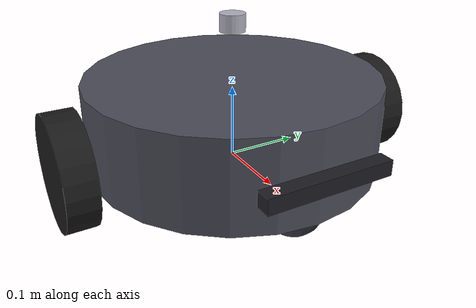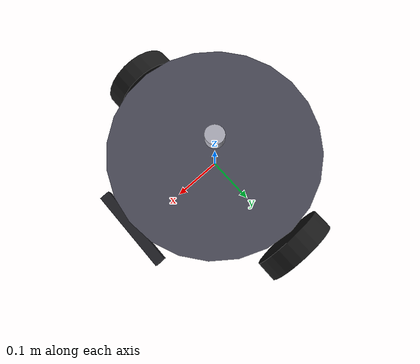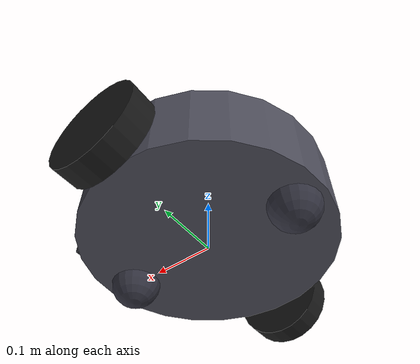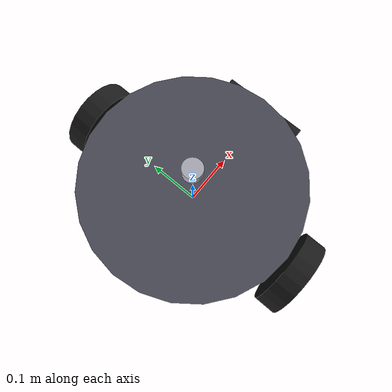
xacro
<?xml version="1.0" encoding="UTF-8"?>
<robot name="diff_drive_robot" xmlns:xacro="http://www.ros.org/wiki/xacro">

  <!-- ========================== 引入子文件 ========================== -->
  <xacro:include filename="$(find multimap_nav_simulation)/robot/part/chassis.xacro"/>
  <xacro:include filename="$(find multimap_nav_simulation)/robot/part/drive_wheel.xacro"/>
  <xacro:include filename="$(find multimap_nav_simulation)/robot/part/caster_wheel.xacro"/>
  <xacro:include filename="$(find multimap_nav_simulation)/robot/drivers/diff_drive.xacro"/>

  <xacro:include filename="$(find multimap_nav_simulation)/robot/sensors/lidar_3d.xacro"/>
  <xacro:include filename="$(find multimap_nav_simulation)/robot/sensors/imu.xacro"/>
  <xacro:include filename="$(find multimap_nav_simulation)/robot/sensors/depth_camera.xacro"/>

  <!-- ========================== 底盘 ========================== -->
  <!-- base_link 为根坐标系；离地高度由轮子/万向球的 joint 偏移 (radius - ground_clearance) 决定 -->
  <xacro:chassis/>

  <!-- ========================== 驱动轮 ========================== -->
  <!-- 左驱动轮: y=+0.23 (wheel_separation/2) -->
  <xacro:drive_wheel prefix="left"  y_pos="${wheel_separation / 2.0}" parent="base_link"/>
  <!-- 右驱动轮: y=-0.23 -->
  <xacro:drive_wheel prefix="right" y_pos="${-wheel_separation / 2.0}" parent="base_link"/>

  <!-- ========================== 万向轮 ========================== -->
  <!-- 前万向轮 -->
  <xacro:caster_wheel prefix="front" x_pos="0.15" y_pos="0.0" parent="base_link"/>
  <!-- 后万向轮 -->
  <xacro:caster_wheel prefix="rear" x_pos="-0.15" y_pos="0.0" parent="base_link"/>

  <!-- ========================== 3D 多线激光雷达 (lidar_3d) ========================== -->
  <!-- 前装：x=0.28, z=0.19。
       发布点云话题 /livox/lidar_PointCloud2，frame 为 lidar_link。 -->
  <xacro:lidar_3d parent="base_link" xyz="0 0 0.19" rpy="0 0 0"/>

  <!-- ========================== 深度相机 ========================== -->
  <!-- 前装：x=0.21 = 底盘半径 0.20 + 相机厚度一半 0.01，
       即相机后表面正好贴住底盘外壁（不嵌入本体）；
       光心在长方体前表面中心，optical 系 +Z 朝机器人正前方，
       深度点云话题 /depth_camera/depth/points 可直接作为 octomap 输入。 -->
  <xacro:depth_camera name="depth_camera" parent="base_link" xyz="0.21 0 0.06" rpy="0 0 0"/>

  <!-- ========================== IMU ========================== -->
  <!-- 安装在底盘内部中心 -->
  <xacro:imu parent="base_link" xyz="0 0 ${0.06}" rpy="0 0 0"/>

  <!-- ========================== Gazebo P3D 地面真值里程计 ========================== -->
  <gazebo>
    <plugin name="gazebo_ros_p3d" filename="libgazebo_ros_p3d.so">
      <ros>
        <!-- 插件默认话题即 odom（解析为 /odom），显式声明便于阅读 -->
        <remapping>odom:=/odom</remapping>
      </ros>
      <body_name>base_link</body_name>
      <update_rate>100</update_rate>
    </plugin>
  </gazebo>

  <!-- ========================== ros2_control + 传动 ========================== -->
  <!-- 驱动轮 transmission -->
  <xacro:wheel_transmission joint_name="left_wheel_joint"/>
  <xacro:wheel_transmission joint_name="right_wheel_joint"/>

  <!-- ros2_control 硬件接口 -->
  <xacro:diff_drive_ros2_control/>

  <!-- gazebo_ros2_control 插件 -->
  <xacro:gazebo_ros2_control_plugin/>

</robot>

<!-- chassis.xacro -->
<robot xmlns:xacro="http://www.ros.org/wiki/xacro">

  <xacro:property name="chassis_radius" value="0.20"/>
  <xacro:property name="chassis_height" value="0.12"/>
  <xacro:property name="chassis_mass"   value="8.0"/>  <!-- 尺寸缩小至 1/3，按相同密度质量为 1/27 -->

  <!-- 底盘质心在圆柱几何中心 -->
  <xacro:macro name="chassis">
    <link name="base_link">
      <inertial>
        <origin xyz="0 0 ${chassis_height / 2.0}" rpy="0 0 0"/>
        <mass value="${chassis_mass}"/>
        <!-- 实心圆柱绕质心惯性矩:
             ixx = iyy = m/12 * (3*r² + h²)
             izz = m/2 * r² -->
        <inertia
          ixx="${chassis_mass / 12.0 * (3.0 * chassis_radius * chassis_radius + chassis_height * chassis_height)}"
          iyy="${chassis_mass / 12.0 * (3.0 * chassis_radius * chassis_radius + chassis_height * chassis_height)}"
          izz="${chassis_mass / 2.0 * chassis_radius * chassis_radius}"
          ixy="0.0" ixz="0.0" iyz="0.0"/>
      </inertial>

      <visual>
        <origin xyz="0 0 ${chassis_height / 2.0}" rpy="0 0 0"/>
        <geometry>
          <cylinder radius="${chassis_radius}" length="${chassis_height}"/>
        </geometry>
        <material name="dark_grey">
          <color rgba="0.3 0.3 0.35 1.0"/>
        </material>
      </visual>

      <collision>
        <origin xyz="0 0 ${chassis_height / 2.0}" rpy="0 0 0"/>
        <geometry>
          <cylinder radius="${chassis_radius}" length="${chassis_height}"/>
        </geometry>
      </collision>
    </link>
  </xacro:macro>

</robot>

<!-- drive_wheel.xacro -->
<robot xmlns:xacro="http://www.ros.org/wiki/xacro">

  <xacro:property name="wheel_radius"  value="0.075"/>
  <xacro:property name="wheel_length"  value="0.04"/>
  <xacro:property name="wheel_mass"    value="0.5"/>  <!-- 尺寸缩小至 1/3，按相同密度质量为 1/27 -->
  <xacro:property name="wheel_x_pos"   value="0.0"/>   <!-- 驱动轮 X 位置（与质心对齐） -->
  <xacro:property name="ground_clearance" value="0.04"/>

  <xacro:macro name="drive_wheel" params="prefix y_pos parent:=base_link">
    <!-- joint: 绕 Y 轴旋转 -->
    <joint name="${prefix}_wheel_joint" type="continuous">
      <parent link="${parent}"/>
      <child link="${prefix}_wheel_link"/>
      <origin xyz="${wheel_x_pos} ${y_pos} ${wheel_radius - ground_clearance}" rpy="0 0 0"/>
      <axis xyz="0 1 0"/>
      <limit effort="100" velocity="100"/>
      <dynamics damping="0.1" friction="0.01"/>
    </joint>

    <link name="${prefix}_wheel_link">
      <inertial>
        <mass value="${wheel_mass}"/>
        <inertia
          ixx="${wheel_mass * wheel_radius * wheel_radius / 2.0}"
          iyy="${wheel_mass * (3.0 * wheel_radius * wheel_radius + wheel_length * wheel_length) / 12.0}"
          izz="${wheel_mass * (3.0 * wheel_radius * wheel_radius + wheel_length * wheel_length) / 12.0}"
          ixy="0.0" ixz="0.0" iyz="0.0"/>
      </inertial>

      <visual>
        <origin xyz="0 0 0" rpy="${pi/2.0} 0 0"/>
        <geometry>
          <cylinder radius="${wheel_radius}" length="${wheel_length}"/>
        </geometry>
        <material name="black">
          <color rgba="0.1 0.1 0.1 1.0"/>
        </material>
      </visual>

      <collision>
        <origin xyz="0 0 0" rpy="${pi/2.0} 0 0"/>
        <geometry>
          <cylinder radius="${wheel_radius}" length="${wheel_length}"/>
        </geometry>
      </collision>
    </link>

    <!-- Gazebo 物理属性 -->
    <gazebo reference="${prefix}_wheel_link">
      <mu1>4.0</mu1>       <!-- terrain 坡面纵向抓地力 -->
      <mu2>4.0</mu2>       <!-- terrain 坡面横向静摩擦 -->
      <kp>1e6</kp>
      <kd>100.0</kd>
      <maxVel>0.1</maxVel>
      <minDepth>0.001</minDepth>
      <material>Gazebo/DarkGrey</material>
    </gazebo>
  </xacro:macro>

</robot>

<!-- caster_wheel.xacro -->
<robot xmlns:xacro="http://www.ros.org/wiki/xacro">

  <xacro:property name="caster_radius"  value="0.04"/>
  <xacro:property name="caster_mass"    value="0.15"/>  <!-- 尺寸缩小至 1/3，按相同密度质量为 1/27 -->
  <xacro:property name="ground_clearance" value="0.04"/>

  <xacro:macro name="caster_wheel" params="prefix x_pos y_pos parent:=base_link">
    <!-- 万向球 joint: fixed（使用0摩擦力滑动模拟万向） -->
    <joint name="${prefix}_caster_joint" type="fixed">
      <parent link="${parent}"/>
      <child link="${prefix}_caster_link"/>
      <origin xyz="${x_pos} ${y_pos} ${caster_radius - ground_clearance}" rpy="0 0 0"/>
    </joint>

    <link name="${prefix}_caster_link">
      <inertial>
        <mass value="${caster_mass}"/>
        <!-- 实心球惯性张量: 2/5 * m * r^2 -->
        <inertia
          ixx="${2.0 * caster_mass * caster_radius * caster_radius / 5.0}"
          iyy="${2.0 * caster_mass * caster_radius * caster_radius / 5.0}"
          izz="${2.0 * caster_mass * caster_radius * caster_radius / 5.0}"
          ixy="0.0" ixz="0.0" iyz="0.0"/>
      </inertial>

      <visual>
        <origin xyz="0 0 0" rpy="0 0 0"/>
        <geometry>
          <sphere radius="${caster_radius}"/>
        </geometry>
        <material name="dark_grey">
          <color rgba="0.2 0.2 0.25 1.0"/>
        </material>
      </visual>

      <collision>
        <origin xyz="0 0 0" rpy="0 0 0"/>
        <geometry>
          <sphere radius="${caster_radius}"/>
        </geometry>
      </collision>
    </link>

    <!-- Gazebo 物理属性：0摩擦力的万向球，保证顺滑且不卡顿 -->
    <gazebo reference="${prefix}_caster_link">
      <mu1>0.0</mu1>
      <mu2>0.0</mu2>
      <kp>1e6</kp>
      <kd>100.0</kd>
      <minDepth>0.001</minDepth>
      <material>Gazebo/DarkGrey</material>
    </gazebo>
  </xacro:macro>

</robot>

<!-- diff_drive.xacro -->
<robot xmlns:xacro="http://www.ros.org/wiki/xacro">

  <xacro:property name="wheel_separation" value="0.46"/>  <!-- 左右轮距 -->
  <xacro:property name="wheel_radius"     value="0.075"/> <!-- 驱动轮半径 -->

  <xacro:macro name="wheel_transmission" params="joint_name">
    <transmission name="${joint_name}_trans">
      <type>transmission_interface/SimpleTransmission</type>
      <joint name="${joint_name}">
        <hardwareInterface>hardware_interface/VelocityJointInterface</hardwareInterface>
      </joint>
      <actuator name="${joint_name}_motor">
        <hardwareInterface>hardware_interface/VelocityJointInterface</hardwareInterface>
        <mechanicalReduction>1</mechanicalReduction>
      </actuator>
    </transmission>
  </xacro:macro>

  <xacro:macro name="diff_drive_ros2_control" params="">
    <ros2_control name="GazeboSystem" type="system">
      <hardware>
        <plugin>gazebo_ros2_control/GazeboSystem</plugin>
      </hardware>

      <joint name="left_wheel_joint">
        <command_interface name="velocity"/>
        <state_interface name="position"/>
        <state_interface name="velocity"/>
      </joint>

      <joint name="right_wheel_joint">
        <command_interface name="velocity"/>
        <state_interface name="position"/>
        <state_interface name="velocity"/>
      </joint>
    </ros2_control>
  </xacro:macro>

  <xacro:macro name="gazebo_ros2_control_plugin" params="">
    <gazebo>
      <plugin name="gazebo_ros2_control" filename="libgazebo_ros2_control.so">
        <parameters>$(find multimap_nav_simulation)/config/robot.yaml</parameters>
        <ros>
          <remapping>/diff_drive_controller/cmd_vel_unstamped:=/cmd_vel</remapping>
          <!-- /odom 已由 gazebo_ros_p3d 地面真值占用（见 robot.xacro），
               轮式里程计消息改到 /odom_diff_drive 避免双发布 -->
          <remapping>/diff_drive_controller/odom:=/odom_diff_drive</remapping>
        </ros>
      </plugin>
    </gazebo>
  </xacro:macro>

</robot>

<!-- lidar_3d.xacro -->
<robot xmlns:xacro="http://www.ros.org/wiki/xacro">

  <xacro:property name="lidar_mass"     value="0.0307407407"/> <!-- 0.83 / 27 kg -->
  <xacro:property name="lidar_radius"   value="0.0173333333"/>
  <xacro:property name="lidar_height"   value="0.024"/>

  <!-- 激光雷达扫描参数 -->
  <xacro:property name="lidar_samples"        value="1800"/>   <!-- 每圈采样数 -->
  <xacro:property name="lidar_min_angle"      value="-3.14159"/> <!-- 水平起始角 (rad) -->
  <xacro:property name="lidar_max_angle"      value="3.14159"/>  <!-- 水平终止角 (rad) -->
  <xacro:property name="lidar_min_range"      value="0.4"/>      <!-- 最小测距 (m) -->
  <xacro:property name="lidar_max_range"      value="10.0"/>     <!-- 最大测距 (m)，与 octomap max_range 一致 -->
  <xacro:property name="lidar_range_res"      value="0.02"/>     <!-- 距离分辨率 -->
  <xacro:property name="lidar_hz"             value="100.0"/>     <!-- 扫描频率 (Hz) -->
  <xacro:property name="lidar_vert_rays"      value="16"/>       <!-- 垂直线数 -->
  <xacro:property name="lidar_vert_min_angle" value="-0.2618"/>  <!-- 垂直最小角 -15° -->
  <xacro:property name="lidar_vert_max_angle" value="0.2618"/>   <!-- 垂直最大角 +15° -->

  <xacro:macro name="lidar_3d" params="parent:=base_link xyz:='0 0 0' rpy:='0 0 0'">
    <link name="lidar_link">
      <inertial>
        <mass value="${lidar_mass}"/>
        <origin xyz="0 0 0" rpy="0 0 0"/>
        <inertia
          ixx="${lidar_mass * (3.0 * lidar_radius * lidar_radius + lidar_height * lidar_height) / 12.0}"
          iyy="${lidar_mass * (3.0 * lidar_radius * lidar_radius + lidar_height * lidar_height) / 12.0}"
          izz="${lidar_mass * lidar_radius * lidar_radius / 2.0}"
          ixy="0.0" ixz="0.0" iyz="0.0"/>
      </inertial>

      <visual>
        <origin xyz="0 0 0" rpy="0 0 0"/>
        <geometry>
          <cylinder radius="${lidar_radius}" length="${lidar_height}"/>
        </geometry>
        <material name="silver">
          <color rgba="0.7 0.7 0.75 1.0"/>
        </material>
      </visual>

      <collision>
        <origin xyz="0 0 0" rpy="0 0 0"/>
        <geometry>
          <cylinder radius="${lidar_radius}" length="${lidar_height}"/>
        </geometry>
      </collision>
    </link>

    <joint name="lidar_joint" type="fixed">
      <parent link="${parent}"/>
      <child link="lidar_link"/>
      <origin xyz="${xyz}" rpy="${rpy}"/>
    </joint>

    <!-- Gazebo 多线激光雷达插件 -->
    <gazebo reference="lidar_link">
      <sensor name="lidar_sensor" type="ray">
        <pose>0 0 0 0 0 0</pose>
        <visualize>false</visualize>
        <update_rate>${lidar_hz}</update_rate>

        <ray>
          <scan>
            <horizontal>
              <samples>${lidar_samples}</samples>
              <resolution>1</resolution>
              <min_angle>${lidar_min_angle}</min_angle>
              <max_angle>${lidar_max_angle}</max_angle>
            </horizontal>
            <vertical>
              <samples>${lidar_vert_rays}</samples>
              <resolution>1</resolution>
              <min_angle>${lidar_vert_min_angle}</min_angle>
              <max_angle>${lidar_vert_max_angle}</max_angle>
            </vertical>
          </scan>
          <range>
            <min>${lidar_min_range}</min>
            <max>${lidar_max_range}</max>
            <resolution>${lidar_range_res}</resolution>
          </range>
          <noise>
            <type>gaussian</type>
            <mean>0.0</mean>
            <stddev>0.005</stddev>
          </noise>
        </ray>

        <plugin name="lidar_controller" filename="libgazebo_ros_ray_sensor.so">
          <ros>
            <!-- 直接发布到 octomap 建图默认输入话题，无需改动启动文件 -->
            <remapping>~/out:=/points_raw</remapping>
          </ros>
          <output_type>sensor_msgs/PointCloud2</output_type>
          <frame_name>lidar_link</frame_name>
        </plugin>
      </sensor>
    </gazebo>
  </xacro:macro>

</robot>

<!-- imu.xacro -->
<robot xmlns:xacro="http://www.ros.org/wiki/xacro">

  <xacro:property name="imu_mass"   value="0.0018518519"/> <!-- 0.05 / 27 kg -->
  <xacro:property name="imu_size"   value="0.01"/>  <!-- 小方块边长，为原尺寸的 1/3 -->
  <xacro:property name="imu_hz"     value="200.0"/> <!-- IMU 更新频率 -->

  <xacro:macro name="imu" params="parent:=base_link xyz:='0 0 0.1' rpy:='0 0 0'">
    <link name="imu_link">
      <inertial>
        <mass value="${imu_mass}"/>
        <origin xyz="0 0 0" rpy="0 0 0"/>
        <inertia
          ixx="${imu_mass * imu_size * imu_size / 6.0}"
          iyy="${imu_mass * imu_size * imu_size / 6.0}"
          izz="${imu_mass * imu_size * imu_size / 6.0}"
          ixy="0.0" ixz="0.0" iyz="0.0"/>
      </inertial>

      <visual>
        <origin xyz="0 0 0" rpy="0 0 0"/>
        <geometry>
          <box size="${imu_size} ${imu_size} ${imu_size}"/>
        </geometry>
        <material name="red">
          <color rgba="0.8 0.1 0.1 1.0"/>
        </material>
      </visual>

      <collision>
        <origin xyz="0 0 0" rpy="0 0 0"/>
        <geometry>
          <box size="${imu_size} ${imu_size} ${imu_size}"/>
        </geometry>
      </collision>
    </link>

    <joint name="imu_joint" type="fixed">
      <parent link="${parent}"/>
      <child link="imu_link"/>
      <origin xyz="${xyz}" rpy="${rpy}"/>
    </joint>

    <!-- Gazebo IMU 传感器插件 -->
    <gazebo reference="imu_link">
      <sensor name="imu_sensor" type="imu">
        <always_on>true</always_on>
        <pose>0 0 0 0 0 0</pose>
        <update_rate>${imu_hz}</update_rate>

        <imu>
          <angular_velocity>
            <x>
              <noise type="gaussian">
                <mean>0.0</mean>
                <stddev>0.0003</stddev>
              </noise>
            </x>
            <y>
              <noise type="gaussian">
                <mean>0.0</mean>
                <stddev>0.0003</stddev>
              </noise>
            </y>
            <z>
              <noise type="gaussian">
                <mean>0.0</mean>
                <stddev>0.0003</stddev>
              </noise>
            </z>
          </angular_velocity>
          <linear_acceleration>
            <x>
              <noise type="gaussian">
                <mean>0.0</mean>
                <stddev>0.01</stddev>   <!-- ~0.01 m/s² -->
              </noise>
            </x>
            <y>
              <noise type="gaussian">
                <mean>0.0</mean>
                <stddev>0.01</stddev>
              </noise>
            </y>
            <z>
              <noise type="gaussian">
                <mean>0.0</mean>
                <stddev>0.01</stddev>
              </noise>
            </z>
          </linear_acceleration>
        </imu>

        <plugin name="imu_controller" filename="libgazebo_ros_imu_sensor.so">
          <ros>
            <remapping>~/out:=/livox/imu_raw</remapping>
          </ros>
          <frame_name>imu_link</frame_name>
        </plugin>
      </sensor>
    </gazebo>
  </xacro:macro>

</robot>

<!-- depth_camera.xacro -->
<robot xmlns:xacro="http://www.ros.org/wiki/xacro">

  <xacro:property name="depth_camera_x"     value="0.02"/>          <!-- 前后厚度 [m] -->
  <xacro:property name="depth_camera_y"     value="0.1666666667"/>  <!-- 左右长度 [m] -->
  <xacro:property name="depth_camera_z"     value="0.02"/>          <!-- 高度 [m] -->
  <xacro:property name="depth_camera_mass"  value="0.0111111111"/>  <!-- 0.30 / 27 kg -->

  <xacro:property name="depth_camera_hfov"  value="1.3963"/> <!-- 水平视场角 80° [rad] -->
  <xacro:property name="depth_camera_w"     value="640"/>    <!-- 图像宽度 [px] -->
  <xacro:property name="depth_camera_h"     value="480"/>    <!-- 图像高度 [px] -->
  <xacro:property name="depth_camera_hz"    value="10.0"/>   <!-- 更新频率 [Hz] -->
  <xacro:property name="depth_camera_near"  value="0.05"/>   <!-- 最近有效距离 [m] -->
  <xacro:property name="depth_camera_far"   value="8.0"/>    <!-- 最远有效距离 [m] -->

  <xacro:macro name="depth_camera" params="name:='depth_camera' parent:='base_link' xyz:='0.21 0 0.06' rpy:='0 0 0' width:=${depth_camera_w} height:=${depth_camera_h}">

    <!-- ========================== 相机本体 link ========================== -->
    <link name="${name}_link">
      <inertial>
        <mass value="${depth_camera_mass}"/>
        <origin xyz="0 0 0" rpy="0 0 0"/>
        <inertia
          ixx="${depth_camera_mass / 12.0 * (depth_camera_y * depth_camera_y + depth_camera_z * depth_camera_z)}"
          iyy="${depth_camera_mass / 12.0 * (depth_camera_x * depth_camera_x + depth_camera_z * depth_camera_z)}"
          izz="${depth_camera_mass / 12.0 * (depth_camera_x * depth_camera_x + depth_camera_y * depth_camera_y)}"
          ixy="0.0" ixz="0.0" iyz="0.0"/>
      </inertial>

      <visual>
        <origin xyz="0 0 0" rpy="0 0 0"/>
        <geometry>
          <box size="${depth_camera_x} ${depth_camera_y} ${depth_camera_z}"/>
        </geometry>
        <material name="camera_dark">
          <color rgba="0.12 0.12 0.14 1.0"/>
        </material>
      </visual>

      <collision>
        <origin xyz="0 0 0" rpy="0 0 0"/>
        <geometry>
          <box size="${depth_camera_x} ${depth_camera_y} ${depth_camera_z}"/>
        </geometry>
      </collision>
    </link>

    <!-- ========================== 相机安装 joint ========================== -->
    <joint name="${name}_joint" type="fixed">
      <parent link="${parent}"/>
      <child link="${name}_link"/>
      <origin xyz="${xyz}" rpy="${rpy}"/>
    </joint>

    <!-- ========================== optical link ========================== -->
    <!-- 相对本体前移半个厚度，光心位于长方体前表面中心；
         rpy=-pi/2,0,-pi/2 将 optical 系的 +Z 指向机器人正前方 -->
    <link name="${name}_optical_link">
      <inertial>
        <mass value="0.001"/>
        <origin xyz="0 0 0" rpy="0 0 0"/>
        <inertia ixx="1e-6" iyy="1e-6" izz="1e-6" ixy="0.0" ixz="0.0" iyz="0.0"/>
      </inertial>
    </link>

    <joint name="${name}_optical_joint" type="fixed">
      <parent link="${name}_link"/>
      <child link="${name}_optical_link"/>
      <origin xyz="${depth_camera_x / 2.0} 0 0" rpy="${-pi/2.0} 0 ${-pi/2.0}"/>
    </joint>

    <!-- ========================== Gazebo 深度相机传感器 ========================== -->
    <!-- 传感器挂在 optical link 上，pose 为 0，Gazebo 沿该 link 的 +Z 出射线，
         因此点云天然位于 camera_optical_link 系且 FOV 朝前。 -->
    <gazebo reference="${name}_link">
      <sensor type="depth" name="${name}_sensor">
        <pose>0 0 0 0 0 0</pose>
        <always_on>true</always_on>
        <update_rate>${depth_camera_hz}</update_rate>
        <visualize>false</visualize>

        <camera>
          <horizontal_fov>${depth_camera_hfov}</horizontal_fov>
          <image>
            <width>${width}</width>
            <height>${height}</height>
            <format>R8G8B8</format>
          </image>
          <clip>
            <near>${depth_camera_near}</near>
            <far>${depth_camera_far}</far>
          </clip>
          <noise>
            <type>gaussian</type>
            <mean>0.0</mean>
            <stddev>0.005</stddev>
          </noise>
        </camera>

        <!-- Humble 的 depth 传感器由 libgazebo_ros_camera.so 统一支持
             （gazebo_plugins 中没有单独的 depth 插件） -->
        <plugin name="${name}_controller" filename="libgazebo_ros_camera.so">
          <ros>
            <remapping>${name}/image_raw:=/${name}/color/image_raw</remapping>
            <remapping>${name}/depth/image_raw:=/${name}/depth/image_raw</remapping>
            <remapping>${name}/camera_info:=/${name}/color/camera_info</remapping>
            <remapping>${name}/depth/camera_info:=/${name}/depth/camera_info</remapping>
            <remapping>${name}/points:=/${name}/depth/points</remapping>
          </ros>
          <camera_name>${name}</camera_name>
          <frame_name>${name}_optical_link</frame_name>
          <min_depth>${depth_camera_near}</min_depth>
          <max_depth>${depth_camera_far}</max_depth>
        </plugin>
      </sensor>
    </gazebo>

  </xacro:macro>

</robot>
